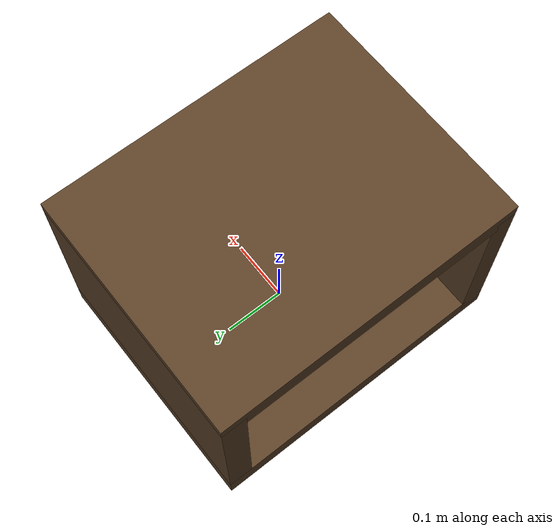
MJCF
<mujoco model="wall_2">
  <compiler angle="radian" autolimits="true" />

  <asset>
    <texture type="2d" name="light_wood_wall_2" file="light_wood_v2.png" />
        <material name="wood_mat_wall_2" texture="light_wood_wall_2" specular="0.5" shininess="0.5" rgba="0.5 0.5 0.5 1" />
  </asset>

  <worldbody>
    <body name="body_wall_2" pos="0 0 0">
      <geom type="box" size="0.2 0.25 0.02" pos="0.0 0.0 0.0" material="wood_mat_wall_2" />
      <geom type="box" size="0.2 0.25 0.02" pos="0.0 0.0 0.3" material="wood_mat_wall_2" />
      <geom type="box" size="0.2 0.02 0.15" pos="0.0 0.23 0.15" material="wood_mat_wall_2" />
      <geom type="box" size="0.2 0.02 0.15" pos="0.0 -0.23 0.15" material="wood_mat_wall_2" />
    </body>
  </worldbody>

</mujoco>
